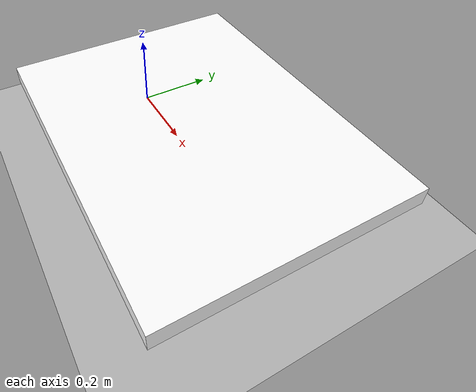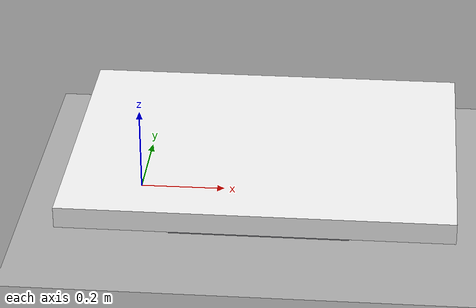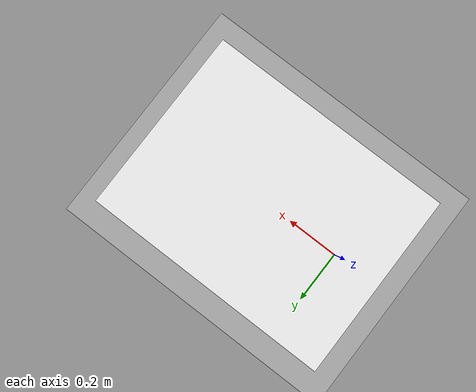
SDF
<?xml version="1.0"?>
<sdf version="1.6">
  <world name="default">
    <light name="sun" type="directional">
      <pose>0 0 10 0 0 0</pose>
      <diffuse>0.8 0.8 0.8 1</diffuse>
      <specular>0.2 0.2 0.2 1</specular>
      <direction>-0.2 0.3 -1</direction>
    </light>
    <model name="ground_plane">
      <static>true</static>
      <link name="ground">
        <collision name="collision">
          <geometry><plane><normal>0 0 1</normal><size>10 10</size></plane></geometry>
        </collision>
        <visual name="visual">
          <geometry><plane><normal>0 0 1</normal><size>10 10</size></plane></geometry>
          <material><ambient>0.7 0.7 0.7 1</ambient><diffuse>0.7 0.7 0.7 1</diffuse></material>
        </visual>
      </link>
    </model>
    <model name="worktable">
      <static>true</static>
      <pose>0.30 0 0.05 0 0 0</pose>
      <link name="top">
        <collision name="collision">
          <geometry><box><size>0.42 0.42 0.10</size></box></geometry>
        </collision>
        <visual name="visual">
          <geometry><box><size>0.42 0.42 0.10</size></box></geometry>
          <material><ambient>0.55 0.55 0.58 1</ambient><diffuse>0.55 0.55 0.58 1</diffuse></material>
        </visual>
      </link>
    </model>
    <include>
      <uri>model://calib_board</uri>
      <name>calib_board</name>
      <pose>0.30 0.0 0.11 0 0 0</pose>
    </include>
    <plugin name="gazebo_ros_state" filename="libgazebo_ros_state.so">
      <ros><namespace>/gazebo</namespace></ros>
      <update_rate>10.0</update_rate>
    </plugin>
  </world>
</sdf>

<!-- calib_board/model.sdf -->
<sdf version="1.6">
    <model name="textured_wall">
        <static>true</static>
        <pose>0 0 1 0 -1.57 -1.57</pose>
        <link name="wall_link">
            <visual name="wall_visual">
                <geometry>
                    <box>
                        <size>0.9 0.68 0.05</size>                        <!-- 调整尺寸以匹配您的墙壁大小 -->
                    </box>
                </geometry>
                <material>
                    <shader type="pixel"/>
                    <ambient>1 1 1 1</ambient>
                    <diffuse>1 1 1 1</diffuse>
                    <specular>1 1 1 1</specular>
                    <emissive>0 0 0 0</emissive>
                    <pbr>
                        <metal>
                            <albedo_map>file://home/xvshuo/work/scl/gazebo_moviet2/src/calibration/res/calib_board/textures/1.png</albedo_map>
                        </metal>
                    </pbr>
                </material>
            </visual>
        </link>
    </model>
</sdf>
